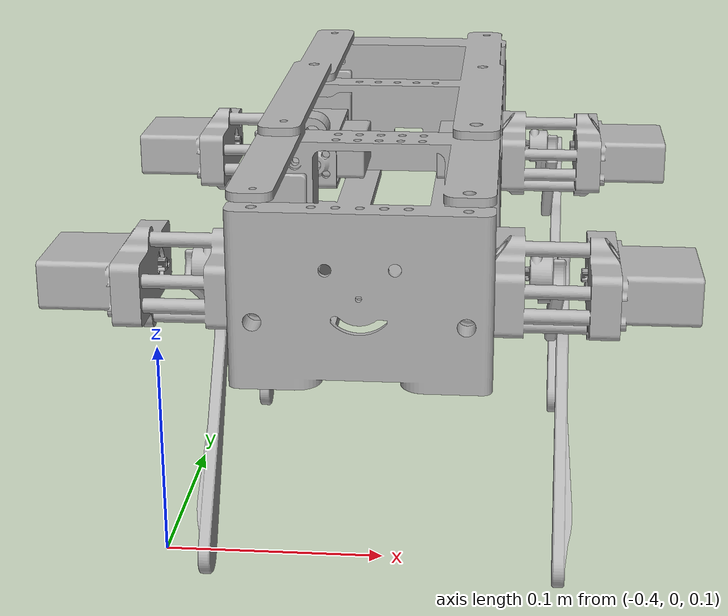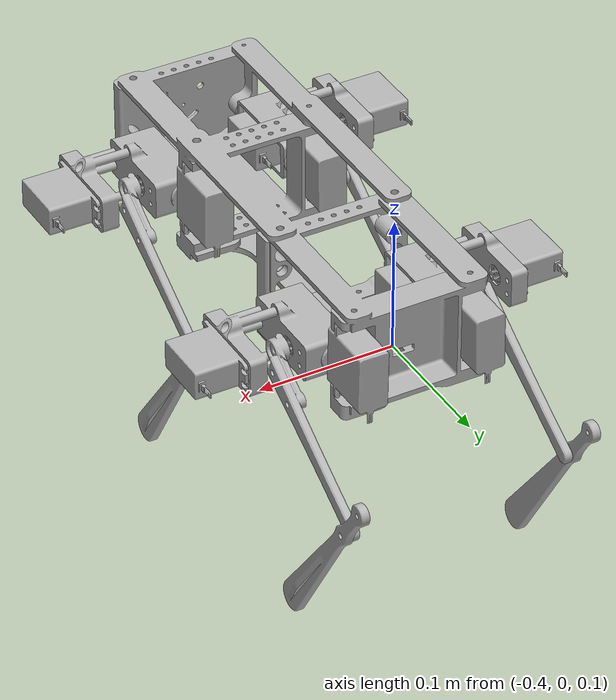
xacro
<?xml version="1.0" ?>
<robot name="unoffcial_dog" xmlns:xacro="http://www.ros.org/wiki/xacro">

<xacro:include filename="$(find unoffcial_dog_description)/urdf/materials.xacro" />
<xacro:include filename="$(find unoffcial_dog_description)/urdf/unoffcial_dog.trans" />
<xacro:include filename="$(find unoffcial_dog_description)/urdf/unoffcial_dog.gazebo" />
<link name="base_link">
  <inertial>
    <origin rpy="0 0 0" xyz="-0.30031866605464624 0.0488302386913517 0.25974219951421007"/>
    <mass value="0.2606887362516945"/>
    <inertia ixx="0.002843" ixy="6e-06" ixz="-0.0" iyy="0.000543" iyz="-1.6e-05" izz="0.002868"/>
  </inertial>
  <visual>
    <origin rpy="0 0 0" xyz="0 0 0"/>
    <geometry>
      <mesh filename="package://unoffcial_dog_description/meshes/base_link.stl" scale="0.001 0.001 0.001"/>
    </geometry>
    <material name="silver_default"/>
  </visual>
  <collision>
    <origin rpy="0 0 0" xyz="0 0 0"/>
    <geometry>
      <mesh filename="package://unoffcial_dog_description/meshes/base_link.stl" scale="0.001 0.001 0.001"/>
    </geometry>
  </collision>
</link>

<link name="back_left_thigh_servo_1">
  <inertial>
    <origin rpy="0 0 0" xyz="-0.021539932675100126 -0.00984964533422189 1.4821927035890692e-05"/>
    <mass value="0.25516561316087144"/>
    <inertia ixx="4.4e-05" ixy="-0.0" ixz="0.0" iyy="4.3e-05" iyz="0.0" izz="7e-05"/>
  </inertial>
  <visual>
    <origin rpy="0 0 0" xyz="0.240767 -0.14985 -0.255017"/>
    <geometry>
      <mesh filename="package://unoffcial_dog_description/meshes/back_left_thigh_servo_1.stl" scale="0.001 0.001 0.001"/>
    </geometry>
    <material name="silver_default"/>
  </visual>
  <collision>
    <origin rpy="0 0 0" xyz="0.240767 -0.14985 -0.255017"/>
    <geometry>
      <mesh filename="package://unoffcial_dog_description/meshes/back_left_thigh_servo_1.stl" scale="0.001 0.001 0.001"/>
    </geometry>
  </collision>
</link>

<link name="back_left_knee_servo__1">
  <inertial>
    <origin rpy="0 0 0" xyz="0.02154178489538669 -0.009846250952893237 -1.5704260949100934e-05"/>
    <mass value="0.25516561316087183"/>
    <inertia ixx="4.4e-05" ixy="0.0" ixz="0.0" iyy="4.3e-05" iyz="-0.0" izz="7e-05"/>
  </inertial>
  <visual>
    <origin rpy="0 0 0" xyz="0.212767 -0.149853 -0.254997"/>
    <geometry>
      <mesh filename="package://unoffcial_dog_description/meshes/back_left_knee_servo__1.stl" scale="0.001 0.001 0.001"/>
    </geometry>
    <material name="silver_default"/>
  </visual>
  <collision>
    <origin rpy="0 0 0" xyz="0.212767 -0.149853 -0.254997"/>
    <geometry>
      <mesh filename="package://unoffcial_dog_description/meshes/back_left_knee_servo__1.stl" scale="0.001 0.001 0.001"/>
    </geometry>
  </collision>
</link>

<link name="back_left_InnerHip_1">
  <inertial>
    <origin rpy="0 0 0" xyz="0.02252999341411238 -0.03294437633347036 -3.5237842516799844e-05"/>
    <mass value="0.033152736768248585"/>
    <inertia ixx="1.8e-05" ixy="2e-06" ixz="0.0" iyy="1.8e-05" iyz="-0.0" izz="2.9e-05"/>
  </inertial>
  <visual>
    <origin rpy="0 0 0" xyz="0.259769 -0.173896 -0.25503"/>
    <geometry>
      <mesh filename="package://unoffcial_dog_description/meshes/back_left_InnerHip_1.stl" scale="0.001 0.001 0.001"/>
    </geometry>
    <material name="silver_default"/>
  </visual>
  <collision>
    <origin rpy="0 0 0" xyz="0.259769 -0.173896 -0.25503"/>
    <geometry>
      <mesh filename="package://unoffcial_dog_description/meshes/back_left_InnerHip_1.stl" scale="0.001 0.001 0.001"/>
    </geometry>
  </collision>
</link>

<link name="back_left_thigh_link_1">
  <inertial>
    <origin rpy="0 0 0" xyz="0.010024360190487247 0.04257767261209694 -0.026017059842814994"/>
    <mass value="0.07793248271306506"/>
    <inertia ixx="0.000122" ixy="-5e-06" ixz="3e-06" iyy="3.4e-05" iyz="5.3e-05" izz="8.9e-05"/>
  </inertial>
  <visual>
    <origin rpy="0 0 0" xyz="0.236967 -0.149851 -0.255014"/>
    <geometry>
      <mesh filename="package://unoffcial_dog_description/meshes/back_left_thigh_link_1.stl" scale="0.001 0.001 0.001"/>
    </geometry>
    <material name="silver_default"/>
  </visual>
  <collision>
    <origin rpy="0 0 0" xyz="0.236967 -0.149851 -0.255014"/>
    <geometry>
      <mesh filename="package://unoffcial_dog_description/meshes/back_left_thigh_link_1.stl" scale="0.001 0.001 0.001"/>
    </geometry>
  </collision>
</link>

<link name="back_left_knee_link_1">
  <inertial>
    <origin rpy="0 0 0" xyz="0.002878633158485494 -0.029094796594651612 -0.04254961489356526"/>
    <mass value="0.09455286210059435"/>
    <inertia ixx="0.000198" ixy="0.0" ixz="0.0" iyy="0.000135" iyz="-9.1e-05" izz="6.4e-05"/>
  </inertial>
  <visual>
    <origin rpy="0 0 0" xyz="0.222522 -0.255213 -0.190588"/>
    <geometry>
      <mesh filename="package://unoffcial_dog_description/meshes/back_left_knee_link_1.stl" scale="0.001 0.001 0.001"/>
    </geometry>
    <material name="silver_default"/>
  </visual>
  <collision>
    <origin rpy="0 0 0" xyz="0.222522 -0.255213 -0.190588"/>
    <geometry>
      <mesh filename="package://unoffcial_dog_description/meshes/back_left_knee_link_1.stl" scale="0.001 0.001 0.001"/>
    </geometry>
  </collision>
</link>

<link name="back_left_adduction_servo_1">
  <inertial>
    <origin rpy="0 0 0" xyz="-0.004565263663396879 0.011690577948047537 -0.024985588171213602"/>
    <mass value="0.25516561316087166"/>
    <inertia ixx="7e-05" ixy="0.0" ixz="0.0" iyy="4.4e-05" iyz="-0.0" izz="4.3e-05"/>
  </inertial>
  <visual>
    <origin rpy="0 0 0" xyz="0.255378 -0.187546 -0.289862"/>
    <geometry>
      <mesh filename="package://unoffcial_dog_description/meshes/back_left_adduction_servo_1.stl" scale="0.001 0.001 0.001"/>
    </geometry>
    <material name="silver_default"/>
  </visual>
  <collision>
    <origin rpy="0 0 0" xyz="0.255378 -0.187546 -0.289862"/>
    <geometry>
      <mesh filename="package://unoffcial_dog_description/meshes/back_left_adduction_servo_1.stl" scale="0.001 0.001 0.001"/>
    </geometry>
  </collision>
</link>

<link name="back_right_InnerHip__1">
  <inertial>
    <origin rpy="0 0 0" xyz="-0.02252396679275276 -0.035950488465180674 -3.571377814287624e-05"/>
    <mass value="0.0331527367682486"/>
    <inertia ixx="1.8e-05" ixy="-2e-06" ixz="-0.0" iyy="1.8e-05" iyz="-0.0" izz="2.9e-05"/>
  </inertial>
  <visual>
    <origin rpy="0 0 0" xyz="0.340982 -0.173888 -0.255205"/>
    <geometry>
      <mesh filename="package://unoffcial_dog_description/meshes/back_right_InnerHip__1.stl" scale="0.001 0.001 0.001"/>
    </geometry>
    <material name="silver_default"/>
  </visual>
  <collision>
    <origin rpy="0 0 0" xyz="0.340982 -0.173888 -0.255205"/>
    <geometry>
      <mesh filename="package://unoffcial_dog_description/meshes/back_right_InnerHip__1.stl" scale="0.001 0.001 0.001"/>
    </geometry>
  </collision>
</link>

<link name="back_right_thigh_servo__1">
  <inertial>
    <origin rpy="0 0 0" xyz="0.021542130039575724 -0.009846247320946994 1.534599140984305e-05"/>
    <mass value="0.25516561316087144"/>
    <inertia ixx="4.4e-05" ixy="0.0" ixz="-0.0" iyy="4.3e-05" iyz="0.0" izz="7e-05"/>
  </inertial>
  <visual>
    <origin rpy="0 0 0" xyz="0.35998 -0.146837 -0.255191"/>
    <geometry>
      <mesh filename="package://unoffcial_dog_description/meshes/back_right_thigh_servo__1.stl" scale="0.001 0.001 0.001"/>
    </geometry>
    <material name="silver_default"/>
  </visual>
  <collision>
    <origin rpy="0 0 0" xyz="0.35998 -0.146837 -0.255191"/>
    <geometry>
      <mesh filename="package://unoffcial_dog_description/meshes/back_right_thigh_servo__1.stl" scale="0.001 0.001 0.001"/>
    </geometry>
  </collision>
</link>

<link name="back_right_knee_servo___1">
  <inertial>
    <origin rpy="0 0 0" xyz="-0.021539587530909232 -0.009849641702402906 -1.5180196574704485e-05"/>
    <mass value="0.2551656131608718"/>
    <inertia ixx="4.4e-05" ixy="-0.0" ixz="-0.0" iyy="4.3e-05" iyz="-0.0" izz="7e-05"/>
  </inertial>
  <visual>
    <origin rpy="0 0 0" xyz="0.38798 -0.146834 -0.255171"/>
    <geometry>
      <mesh filename="package://unoffcial_dog_description/meshes/back_right_knee_servo___1.stl" scale="0.001 0.001 0.001"/>
    </geometry>
    <material name="silver_default"/>
  </visual>
  <collision>
    <origin rpy="0 0 0" xyz="0.38798 -0.146834 -0.255171"/>
    <geometry>
      <mesh filename="package://unoffcial_dog_description/meshes/back_right_knee_servo___1.stl" scale="0.001 0.001 0.001"/>
    </geometry>
  </collision>
</link>

<link name="back_right_thigh_link__1">
  <inertial>
    <origin rpy="0 0 0" xyz="-0.010031625993058346 0.042577039016908014 -0.026016795735303827"/>
    <mass value="0.07793276693390058"/>
    <inertia ixx="0.000122" ixy="5e-06" ixz="-3e-06" iyy="3.4e-05" iyz="5.3e-05" izz="8.9e-05"/>
  </inertial>
  <visual>
    <origin rpy="0 0 0" xyz="0.36378 -0.146836 -0.255188"/>
    <geometry>
      <mesh filename="package://unoffcial_dog_description/meshes/back_right_thigh_link__1.stl" scale="0.001 0.001 0.001"/>
    </geometry>
    <material name="silver_default"/>
  </visual>
  <collision>
    <origin rpy="0 0 0" xyz="0.36378 -0.146836 -0.255188"/>
    <geometry>
      <mesh filename="package://unoffcial_dog_description/meshes/back_right_thigh_link__1.stl" scale="0.001 0.001 0.001"/>
    </geometry>
  </collision>
</link>

<link name="back_right_knee_link__1">
  <inertial>
    <origin rpy="0 0 0" xyz="-0.002873929111916529 -0.029096075847931224 -0.04254909082918337"/>
    <mass value="0.09455286210059435"/>
    <inertia ixx="0.000198" ixy="-0.0" ixz="-0.0" iyy="0.000135" iyz="-9.1e-05" izz="6.4e-05"/>
  </inertial>
  <visual>
    <origin rpy="0 0 0" xyz="0.378243 -0.252197 -0.190762"/>
    <geometry>
      <mesh filename="package://unoffcial_dog_description/meshes/back_right_knee_link__1.stl" scale="0.001 0.001 0.001"/>
    </geometry>
    <material name="silver_default"/>
  </visual>
  <collision>
    <origin rpy="0 0 0" xyz="0.378243 -0.252197 -0.190762"/>
    <geometry>
      <mesh filename="package://unoffcial_dog_description/meshes/back_right_knee_link__1.stl" scale="0.001 0.001 0.001"/>
    </geometry>
  </collision>
</link>

<link name="back_right_adduction_servo__1">
  <inertial>
    <origin rpy="0 0 0" xyz="-0.005434466620742817 0.011690303102358995 -0.02481106410683942"/>
    <mass value="0.2551656131608718"/>
    <inertia ixx="7e-05" ixy="-0.0" ixz="-0.0" iyy="4.4e-05" iyz="-0.0" izz="4.3e-05"/>
  </inertial>
  <visual>
    <origin rpy="0 0 0" xyz="0.335378 -0.187539 -0.289862"/>
    <geometry>
      <mesh filename="package://unoffcial_dog_description/meshes/back_right_adduction_servo__1.stl" scale="0.001 0.001 0.001"/>
    </geometry>
    <material name="silver_default"/>
  </visual>
  <collision>
    <origin rpy="0 0 0" xyz="0.335378 -0.187539 -0.289862"/>
    <geometry>
      <mesh filename="package://unoffcial_dog_description/meshes/back_right_adduction_servo__1.stl" scale="0.001 0.001 0.001"/>
    </geometry>
  </collision>
</link>

<link name="front_left_InnerHip__1">
  <inertial>
    <origin rpy="0 0 0" xyz="0.022530563781380353 -0.03326145347802484 -3.5237842538504704e-05"/>
    <mass value="0.033152736768248585"/>
    <inertia ixx="1.8e-05" ixy="2e-06" ixz="0.0" iyy="1.8e-05" iyz="-0.0" izz="2.9e-05"/>
  </inertial>
  <visual>
    <origin rpy="0 0 0" xyz="0.259752 0.021104 -0.25503"/>
    <geometry>
      <mesh filename="package://unoffcial_dog_description/meshes/front_left_InnerHip__1.stl" scale="0.001 0.001 0.001"/>
    </geometry>
    <material name="silver_default"/>
  </visual>
  <collision>
    <origin rpy="0 0 0" xyz="0.259752 0.021104 -0.25503"/>
    <geometry>
      <mesh filename="package://unoffcial_dog_description/meshes/front_left_InnerHip__1.stl" scale="0.001 0.001 0.001"/>
    </geometry>
  </collision>
</link>

<link name="front_left_knee_servo___1">
  <inertial>
    <origin rpy="0 0 0" xyz="0.02154135526265502 -0.009846328097448169 -1.570426097058375e-05"/>
    <mass value="0.25516561316087183"/>
    <inertia ixx="4.4e-05" ixy="0.0" ixz="0.0" iyy="4.3e-05" iyz="-0.0" izz="7e-05"/>
  </inertial>
  <visual>
    <origin rpy="0 0 0" xyz="0.212749 0.045464 -0.254997"/>
    <geometry>
      <mesh filename="package://unoffcial_dog_description/meshes/front_left_knee_servo___1.stl" scale="0.001 0.001 0.001"/>
    </geometry>
    <material name="silver_default"/>
  </visual>
  <collision>
    <origin rpy="0 0 0" xyz="0.212749 0.045464 -0.254997"/>
    <geometry>
      <mesh filename="package://unoffcial_dog_description/meshes/front_left_knee_servo___1.stl" scale="0.001 0.001 0.001"/>
    </geometry>
  </collision>
</link>

<link name="front_left_thigh_servo__1">
  <inertial>
    <origin rpy="0 0 0" xyz="-0.02154036230783196 -0.009849722478776607 1.4821927014296854e-05"/>
    <mass value="0.25516561316087144"/>
    <inertia ixx="4.4e-05" ixy="-0.0" ixz="0.0" iyy="4.3e-05" iyz="0.0" izz="7e-05"/>
  </inertial>
  <visual>
    <origin rpy="0 0 0" xyz="0.240749 0.045467 -0.255017"/>
    <geometry>
      <mesh filename="package://unoffcial_dog_description/meshes/front_left_thigh_servo__1.stl" scale="0.001 0.001 0.001"/>
    </geometry>
    <material name="silver_default"/>
  </visual>
  <collision>
    <origin rpy="0 0 0" xyz="0.240749 0.045467 -0.255017"/>
    <geometry>
      <mesh filename="package://unoffcial_dog_description/meshes/front_left_thigh_servo__1.stl" scale="0.001 0.001 0.001"/>
    </geometry>
  </collision>
</link>

<link name="front_left_thigh_link__1">
  <inertial>
    <origin rpy="0 0 0" xyz="0.010023930557755384 0.04257859546754338 -0.026017059842834228"/>
    <mass value="0.07793248271306506"/>
    <inertia ixx="0.000122" ixy="-5e-06" ixz="3e-06" iyy="3.4e-05" iyz="5.3e-05" izz="8.9e-05"/>
  </inertial>
  <visual>
    <origin rpy="0 0 0" xyz="0.236949 0.045467 -0.255014"/>
    <geometry>
      <mesh filename="package://unoffcial_dog_description/meshes/front_left_thigh_link__1.stl" scale="0.001 0.001 0.001"/>
    </geometry>
    <material name="silver_default"/>
  </visual>
  <collision>
    <origin rpy="0 0 0" xyz="0.236949 0.045467 -0.255014"/>
    <geometry>
      <mesh filename="package://unoffcial_dog_description/meshes/front_left_thigh_link__1.stl" scale="0.001 0.001 0.001"/>
    </geometry>
  </collision>
</link>

<link name="front_left_knee_link__1">
  <inertial>
    <origin rpy="0 0 0" xyz="0.0028792035257533544 -0.029094873739200923 -0.042549614893582166"/>
    <mass value="0.09455286210059435"/>
    <inertia ixx="0.000198" ixy="0.0" ixz="0.0" iyy="0.000135" iyz="-9.1e-05" izz="6.4e-05"/>
  </inertial>
  <visual>
    <origin rpy="0 0 0" xyz="0.222505 -0.059896 -0.190588"/>
    <geometry>
      <mesh filename="package://unoffcial_dog_description/meshes/front_left_knee_link__1.stl" scale="0.001 0.001 0.001"/>
    </geometry>
    <material name="silver_default"/>
  </visual>
  <collision>
    <origin rpy="0 0 0" xyz="0.222505 -0.059896 -0.190588"/>
    <geometry>
      <mesh filename="package://unoffcial_dog_description/meshes/front_left_knee_link__1.stl" scale="0.001 0.001 0.001"/>
    </geometry>
  </collision>
</link>

<link name="front_left_adduction_servo_1">
  <inertial>
    <origin rpy="0 0 0" xyz="-0.004565721819880242 0.011690578737063306 -0.024985588171235695"/>
    <mass value="0.25516561316087166"/>
    <inertia ixx="7e-05" ixy="0.0" ixz="0.0" iyy="4.4e-05" iyz="-0.0" izz="4.3e-05"/>
  </inertial>
  <visual>
    <origin rpy="0 0 0" xyz="0.25536 0.007454 -0.289862"/>
    <geometry>
      <mesh filename="package://unoffcial_dog_description/meshes/front_left_adduction_servo_1.stl" scale="0.001 0.001 0.001"/>
    </geometry>
    <material name="silver_default"/>
  </visual>
  <collision>
    <origin rpy="0 0 0" xyz="0.25536 0.007454 -0.289862"/>
    <geometry>
      <mesh filename="package://unoffcial_dog_description/meshes/front_left_adduction_servo_1.stl" scale="0.001 0.001 0.001"/>
    </geometry>
  </collision>
</link>

<link name="front_right_innerHip_1">
  <inertial>
    <origin rpy="0 0 0" xyz="-0.02252369538938387 -0.03294419997402807 -3.5713778164248033e-05"/>
    <mass value="0.0331527367682486"/>
    <inertia ixx="1.8e-05" ixy="-2e-06" ixz="-0.0" iyy="1.8e-05" iyz="-0.0" izz="2.9e-05"/>
  </inertial>
  <visual>
    <origin rpy="0 0 0" xyz="0.340965 0.021112 -0.255205"/>
    <geometry>
      <mesh filename="package://unoffcial_dog_description/meshes/front_right_innerHip_1.stl" scale="0.001 0.001 0.001"/>
    </geometry>
    <material name="silver_default"/>
  </visual>
  <collision>
    <origin rpy="0 0 0" xyz="0.340965 0.021112 -0.255205"/>
    <geometry>
      <mesh filename="package://unoffcial_dog_description/meshes/front_right_innerHip_1.stl" scale="0.001 0.001 0.001"/>
    </geometry>
  </collision>
</link>

<link name="_front_right_high_servo_1">
  <inertial>
    <origin rpy="0 0 0" xyz="0.02154140144294514 -0.009845958829793978 1.5345991388360236e-05"/>
    <mass value="0.25516561316087144"/>
    <inertia ixx="4.4e-05" ixy="0.0" ixz="-0.0" iyy="4.3e-05" iyz="0.0" izz="7e-05"/>
  </inertial>
  <visual>
    <origin rpy="0 0 0" xyz="0.359962 0.045157 -0.255191"/>
    <geometry>
      <mesh filename="package://unoffcial_dog_description/meshes/_front_right_high_servo_1.stl" scale="0.001 0.001 0.001"/>
    </geometry>
    <material name="silver_default"/>
  </visual>
  <collision>
    <origin rpy="0 0 0" xyz="0.359962 0.045157 -0.255191"/>
    <geometry>
      <mesh filename="package://unoffcial_dog_description/meshes/_front_right_high_servo_1.stl" scale="0.001 0.001 0.001"/>
    </geometry>
  </collision>
</link>

<link name="_front_right_knee_servo__1">
  <inertial>
    <origin rpy="0 0 0" xyz="-0.021540316127541925 -0.009849353211249627 -1.5180196596076279e-05"/>
    <mass value="0.2551656131608718"/>
    <inertia ixx="4.4e-05" ixy="-0.0" ixz="-0.0" iyy="4.3e-05" iyz="-0.0" izz="7e-05"/>
  </inertial>
  <visual>
    <origin rpy="0 0 0" xyz="0.387962 0.04516 -0.255171"/>
    <geometry>
      <mesh filename="package://unoffcial_dog_description/meshes/_front_right_knee_servo__1.stl" scale="0.001 0.001 0.001"/>
    </geometry>
    <material name="silver_default"/>
  </visual>
  <collision>
    <origin rpy="0 0 0" xyz="0.387962 0.04516 -0.255171"/>
    <geometry>
      <mesh filename="package://unoffcial_dog_description/meshes/_front_right_knee_servo__1.stl" scale="0.001 0.001 0.001"/>
    </geometry>
  </collision>
</link>

<link name="front_right_thigh_link_1">
  <inertial>
    <origin rpy="0 0 0" xyz="-0.010032354589690595 0.04257632750805948 -0.026016795735325587"/>
    <mass value="0.07793276693390058"/>
    <inertia ixx="0.000122" ixy="5e-06" ixz="-3e-06" iyy="3.4e-05" iyz="5.3e-05" izz="8.9e-05"/>
  </inertial>
  <visual>
    <origin rpy="0 0 0" xyz="0.363762 0.045157 -0.255188"/>
    <geometry>
      <mesh filename="package://unoffcial_dog_description/meshes/front_right_thigh_link_1.stl" scale="0.001 0.001 0.001"/>
    </geometry>
    <material name="silver_default"/>
  </visual>
  <collision>
    <origin rpy="0 0 0" xyz="0.363762 0.045157 -0.255188"/>
    <geometry>
      <mesh filename="package://unoffcial_dog_description/meshes/front_right_thigh_link_1.stl" scale="0.001 0.001 0.001"/>
    </geometry>
  </collision>
</link>

<link name="front_right_knee_link_1">
  <inertial>
    <origin rpy="0 0 0" xyz="-0.0028736577085497483 -0.02909578735678014 -0.04254909082920519"/>
    <mass value="0.09455286210059435"/>
    <inertia ixx="0.000198" ixy="-0.0" ixz="-0.0" iyy="0.000135" iyz="-9.1e-05" izz="6.4e-05"/>
  </inertial>
  <visual>
    <origin rpy="0 0 0" xyz="0.378226 -0.060203 -0.190762"/>
    <geometry>
      <mesh filename="package://unoffcial_dog_description/meshes/front_right_knee_link_1.stl" scale="0.001 0.001 0.001"/>
    </geometry>
    <material name="silver_default"/>
  </visual>
  <collision>
    <origin rpy="0 0 0" xyz="0.378226 -0.060203 -0.190762"/>
    <geometry>
      <mesh filename="package://unoffcial_dog_description/meshes/front_right_knee_link_1.stl" scale="0.001 0.001 0.001"/>
    </geometry>
  </collision>
</link>

<link name="front_right_adduction_Servo_1">
  <inertial>
    <origin rpy="0 0 0" xyz="-0.0054349247772262355 0.011690303891375195 -0.02481106410686129"/>
    <mass value="0.2551656131608718"/>
    <inertia ixx="7e-05" ixy="-0.0" ixz="-0.0" iyy="4.4e-05" iyz="-0.0" izz="4.3e-05"/>
  </inertial>
  <visual>
    <origin rpy="0 0 0" xyz="0.33536 0.007461 -0.289862"/>
    <geometry>
      <mesh filename="package://unoffcial_dog_description/meshes/front_right_adduction_Servo_1.stl" scale="0.001 0.001 0.001"/>
    </geometry>
    <material name="silver_default"/>
  </visual>
  <collision>
    <origin rpy="0 0 0" xyz="0.33536 0.007461 -0.289862"/>
    <geometry>
      <mesh filename="package://unoffcial_dog_description/meshes/front_right_adduction_Servo_1.stl" scale="0.001 0.001 0.001"/>
    </geometry>
  </collision>
</link>

<joint name="left_back_fixed_thigh_servo" type="fixed">
  <origin rpy="0 0 0" xyz="0.019002 -0.024046 -1.3e-05"/>
  <parent link="back_left_InnerHip_1"/>
  <child link="back_left_thigh_servo_1"/>
</joint>

<joint name="left_back_fixed_knee_servo" type="fixed">
  <origin rpy="0 0 0" xyz="0.047002 -0.024043 -3.3e-05"/>
  <parent link="back_left_InnerHip_1"/>
  <child link="back_left_knee_servo__1"/>
</joint>

<joint name="left_back_adduction_joint" type="continuous">
  <origin rpy="0 0 0" xyz="-0.004391 -0.01365 -0.034832"/>
  <parent link="back_left_adduction_servo_1"/>
  <child link="back_left_InnerHip_1"/>
  <axis xyz="9e-05 -1.0 -0.0"/>
</joint>

<joint name="left_back_thigh_joint" type="continuous">
  <origin rpy="0 0 0" xyz="0.0038 1e-06 -3e-06"/>
  <parent link="back_left_thigh_servo_1"/>
  <child link="back_left_thigh_link_1"/>
  <axis xyz="1.0 9e-05 -0.000711"/>
</joint>

<joint name="left_back_knee_joint" type="continuous">
  <origin rpy="0 0 0" xyz="0.014445 0.105362 -0.064426"/>
  <parent link="back_left_thigh_link_1"/>
  <child link="back_left_knee_link_1"/>
  <axis xyz="1.0 9e-05 -0.000711"/>
</joint>

<joint name="frame_left_back" type="fixed">
  <origin rpy="0 0 0" xyz="-0.255378 0.187546 0.289862"/>
  <parent link="base_link"/>
  <child link="back_left_adduction_servo_1"/>
</joint>

<joint name="right_back_adduction_joint" type="continuous">
  <origin rpy="0 0 0" xyz="-0.005604 -0.013651 -0.034657"/>
  <parent link="back_right_adduction_servo__1"/>
  <child link="back_right_InnerHip__1"/>
  <axis xyz="-9e-05 1.0 0.0"/>
</joint>

<joint name="right_back_thigh_servo" type="fixed">
  <origin rpy="0 0 0" xyz="-0.018998 -0.027051 -1.4e-05"/>
  <parent link="back_right_InnerHip__1"/>
  <child link="back_right_thigh_servo__1"/>
</joint>

<joint name="right_back_knee_servo" type="fixed">
  <origin rpy="0 0 0" xyz="-0.046998 -0.027054 -3.4e-05"/>
  <parent link="back_right_InnerHip__1"/>
  <child link="back_right_knee_servo___1"/>
</joint>

<joint name="right_back_thigh_joint" type="continuous">
  <origin rpy="0 0 0" xyz="-0.0038 -1e-06 -3e-06"/>
  <parent link="back_right_thigh_servo__1"/>
  <child link="back_right_thigh_link__1"/>
  <axis xyz="1.0 9e-05 0.000711"/>
</joint>

<joint name="right_back_knee_joint" type="continuous">
  <origin rpy="0 0 0" xyz="-0.014463 0.105361 -0.064426"/>
  <parent link="back_right_thigh_link__1"/>
  <child link="back_right_knee_link__1"/>
  <axis xyz="1.0 9e-05 0.000711"/>
</joint>

<joint name="frame_right_back" type="fixed">
  <origin rpy="0 0 0" xyz="-0.335378 0.187539 0.289862"/>
  <parent link="base_link"/>
  <child link="back_right_adduction_servo__1"/>
</joint>

<joint name="left_front_adduction_joint" type="continuous">
  <origin rpy="0 0 0" xyz="-0.004392 -0.01365 -0.034832"/>
  <parent link="front_left_adduction_servo_1"/>
  <child link="front_left_InnerHip__1"/>
  <axis xyz="9e-05 -1.0 -0.0"/>
</joint>

<joint name="left_front_thigh_servo" type="fixed">
  <origin rpy="0 0 0" xyz="0.047003 -0.02436 -3.3e-05"/>
  <parent link="front_left_InnerHip__1"/>
  <child link="front_left_knee_servo___1"/>
</joint>

<joint name="left_front_knee_servo" type="fixed">
  <origin rpy="0 0 0" xyz="0.019003 -0.024363 -1.3e-05"/>
  <parent link="front_left_InnerHip__1"/>
  <child link="front_left_thigh_servo__1"/>
</joint>

<joint name="left_front_thigh_joint" type="continuous">
  <origin rpy="0 0 0" xyz="0.0038 0.0 -3e-06"/>
  <parent link="front_left_thigh_servo__1"/>
  <child link="front_left_thigh_link__1"/>
  <axis xyz="1.0 9e-05 -0.000711"/>
</joint>

<joint name="left_front_knee_joint" type="continuous">
  <origin rpy="0 0 0" xyz="0.014444 0.105363 -0.064426"/>
  <parent link="front_left_thigh_link__1"/>
  <child link="front_left_knee_link__1"/>
  <axis xyz="1.0 9e-05 -0.000711"/>
</joint>

<joint name="front_left_front" type="fixed">
  <origin rpy="0 0 0" xyz="-0.25536 -0.007454 0.289862"/>
  <parent link="base_link"/>
  <child link="front_left_adduction_servo_1"/>
</joint>

<joint name="front_right_adduction_joint" type="continuous">
  <origin rpy="0 0 0" xyz="-0.005605 -0.013651 -0.034657"/>
  <parent link="front_right_adduction_Servo_1"/>
  <child link="front_right_innerHip_1"/>
  <axis xyz="-9e-05 1.0 0.0"/>
</joint>

<joint name="front_right_thigh_servo" type="fixed">
  <origin rpy="0 0 0" xyz="-0.018997 -0.024045 -1.4e-05"/>
  <parent link="front_right_innerHip_1"/>
  <child link="_front_right_high_servo_1"/>
</joint>

<joint name="front_right_knee_servo" type="fixed">
  <origin rpy="0 0 0" xyz="-0.046997 -0.024048 -3.4e-05"/>
  <parent link="front_right_innerHip_1"/>
  <child link="_front_right_knee_servo__1"/>
</joint>

<joint name="front_right_thigh_joint" type="continuous">
  <origin rpy="0 0 0" xyz="-0.0038 0.0 -3e-06"/>
  <parent link="_front_right_high_servo_1"/>
  <child link="front_right_thigh_link_1"/>
  <axis xyz="1.0 9e-05 0.000711"/>
</joint>

<joint name="front_right_knee_joint" type="continuous">
  <origin rpy="0 0 0" xyz="-0.014464 0.10536 -0.064426"/>
  <parent link="front_right_thigh_link_1"/>
  <child link="front_right_knee_link_1"/>
  <axis xyz="1.0 9e-05 0.000711"/>
</joint>

<joint name="frame_front_right" type="fixed">
  <origin rpy="0 0 0" xyz="-0.33536 -0.007461 0.289862"/>
  <parent link="base_link"/>
  <child link="front_right_adduction_Servo_1"/>
</joint>

</robot>

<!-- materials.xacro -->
<robot name="unoffcial_dog" xmlns:xacro="http://www.ros.org/wiki/xacro" >

<material name="silver_default">
  <color rgba="0.700 0.700 0.700 1.000"/>
</material>

</robot>

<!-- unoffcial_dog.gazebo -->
<robot name="unoffcial_dog" xmlns:xacro="http://www.ros.org/wiki/xacro" >

<xacro:property name="body_color" value="Gazebo/Silver" />

<gazebo>
  <plugin filename="libgazebo_ros_control.so" name="control"/>
</gazebo>
<gazebo reference="base_link">
  <material>${body_color}</material>
  <mu1>0.2</mu1>
  <mu2>0.2</mu2>
  <selfCollide>true</selfCollide>
  <gravity>true</gravity>
</gazebo>

<gazebo reference="back_left_thigh_servo_1">
  <material>${body_color}</material>
  <mu1>0.2</mu1>
  <mu2>0.2</mu2>
  <selfCollide>true</selfCollide>
</gazebo>

<gazebo reference="back_left_knee_servo__1">
  <material>${body_color}</material>
  <mu1>0.2</mu1>
  <mu2>0.2</mu2>
  <selfCollide>true</selfCollide>
</gazebo>

<gazebo reference="back_left_InnerHip_1">
  <material>${body_color}</material>
  <mu1>0.2</mu1>
  <mu2>0.2</mu2>
  <selfCollide>true</selfCollide>
</gazebo>

<gazebo reference="back_left_thigh_link_1">
  <material>${body_color}</material>
  <mu1>0.2</mu1>
  <mu2>0.2</mu2>
  <selfCollide>true</selfCollide>
</gazebo>

<gazebo reference="back_left_knee_link_1">
  <material>${body_color}</material>
  <mu1>0.2</mu1>
  <mu2>0.2</mu2>
  <selfCollide>true</selfCollide>
</gazebo>

<gazebo reference="back_left_adduction_servo_1">
  <material>${body_color}</material>
  <mu1>0.2</mu1>
  <mu2>0.2</mu2>
  <selfCollide>true</selfCollide>
</gazebo>

<gazebo reference="back_right_InnerHip__1">
  <material>${body_color}</material>
  <mu1>0.2</mu1>
  <mu2>0.2</mu2>
  <selfCollide>true</selfCollide>
</gazebo>

<gazebo reference="back_right_thigh_servo__1">
  <material>${body_color}</material>
  <mu1>0.2</mu1>
  <mu2>0.2</mu2>
  <selfCollide>true</selfCollide>
</gazebo>

<gazebo reference="back_right_knee_servo___1">
  <material>${body_color}</material>
  <mu1>0.2</mu1>
  <mu2>0.2</mu2>
  <selfCollide>true</selfCollide>
</gazebo>

<gazebo reference="back_right_thigh_link__1">
  <material>${body_color}</material>
  <mu1>0.2</mu1>
  <mu2>0.2</mu2>
  <selfCollide>true</selfCollide>
</gazebo>

<gazebo reference="back_right_knee_link__1">
  <material>${body_color}</material>
  <mu1>0.2</mu1>
  <mu2>0.2</mu2>
  <selfCollide>true</selfCollide>
</gazebo>

<gazebo reference="back_right_adduction_servo__1">
  <material>${body_color}</material>
  <mu1>0.2</mu1>
  <mu2>0.2</mu2>
  <selfCollide>true</selfCollide>
</gazebo>

<gazebo reference="front_left_InnerHip__1">
  <material>${body_color}</material>
  <mu1>0.2</mu1>
  <mu2>0.2</mu2>
  <selfCollide>true</selfCollide>
</gazebo>

<gazebo reference="front_left_knee_servo___1">
  <material>${body_color}</material>
  <mu1>0.2</mu1>
  <mu2>0.2</mu2>
  <selfCollide>true</selfCollide>
</gazebo>

<gazebo reference="front_left_thigh_servo__1">
  <material>${body_color}</material>
  <mu1>0.2</mu1>
  <mu2>0.2</mu2>
  <selfCollide>true</selfCollide>
</gazebo>

<gazebo reference="front_left_thigh_link__1">
  <material>${body_color}</material>
  <mu1>0.2</mu1>
  <mu2>0.2</mu2>
  <selfCollide>true</selfCollide>
</gazebo>

<gazebo reference="front_left_knee_link__1">
  <material>${body_color}</material>
  <mu1>0.2</mu1>
  <mu2>0.2</mu2>
  <selfCollide>true</selfCollide>
</gazebo>

<gazebo reference="front_left_adduction_servo_1">
  <material>${body_color}</material>
  <mu1>0.2</mu1>
  <mu2>0.2</mu2>
  <selfCollide>true</selfCollide>
</gazebo>

<gazebo reference="front_right_innerHip_1">
  <material>${body_color}</material>
  <mu1>0.2</mu1>
  <mu2>0.2</mu2>
  <selfCollide>true</selfCollide>
</gazebo>

<gazebo reference="_front_right_high_servo_1">
  <material>${body_color}</material>
  <mu1>0.2</mu1>
  <mu2>0.2</mu2>
  <selfCollide>true</selfCollide>
</gazebo>

<gazebo reference="_front_right_knee_servo__1">
  <material>${body_color}</material>
  <mu1>0.2</mu1>
  <mu2>0.2</mu2>
  <selfCollide>true</selfCollide>
</gazebo>

<gazebo reference="front_right_thigh_link_1">
  <material>${body_color}</material>
  <mu1>0.2</mu1>
  <mu2>0.2</mu2>
  <selfCollide>true</selfCollide>
</gazebo>

<gazebo reference="front_right_knee_link_1">
  <material>${body_color}</material>
  <mu1>0.2</mu1>
  <mu2>0.2</mu2>
  <selfCollide>true</selfCollide>
</gazebo>

<gazebo reference="front_right_adduction_Servo_1">
  <material>${body_color}</material>
  <mu1>0.2</mu1>
  <mu2>0.2</mu2>
  <selfCollide>true</selfCollide>
</gazebo>

</robot>
